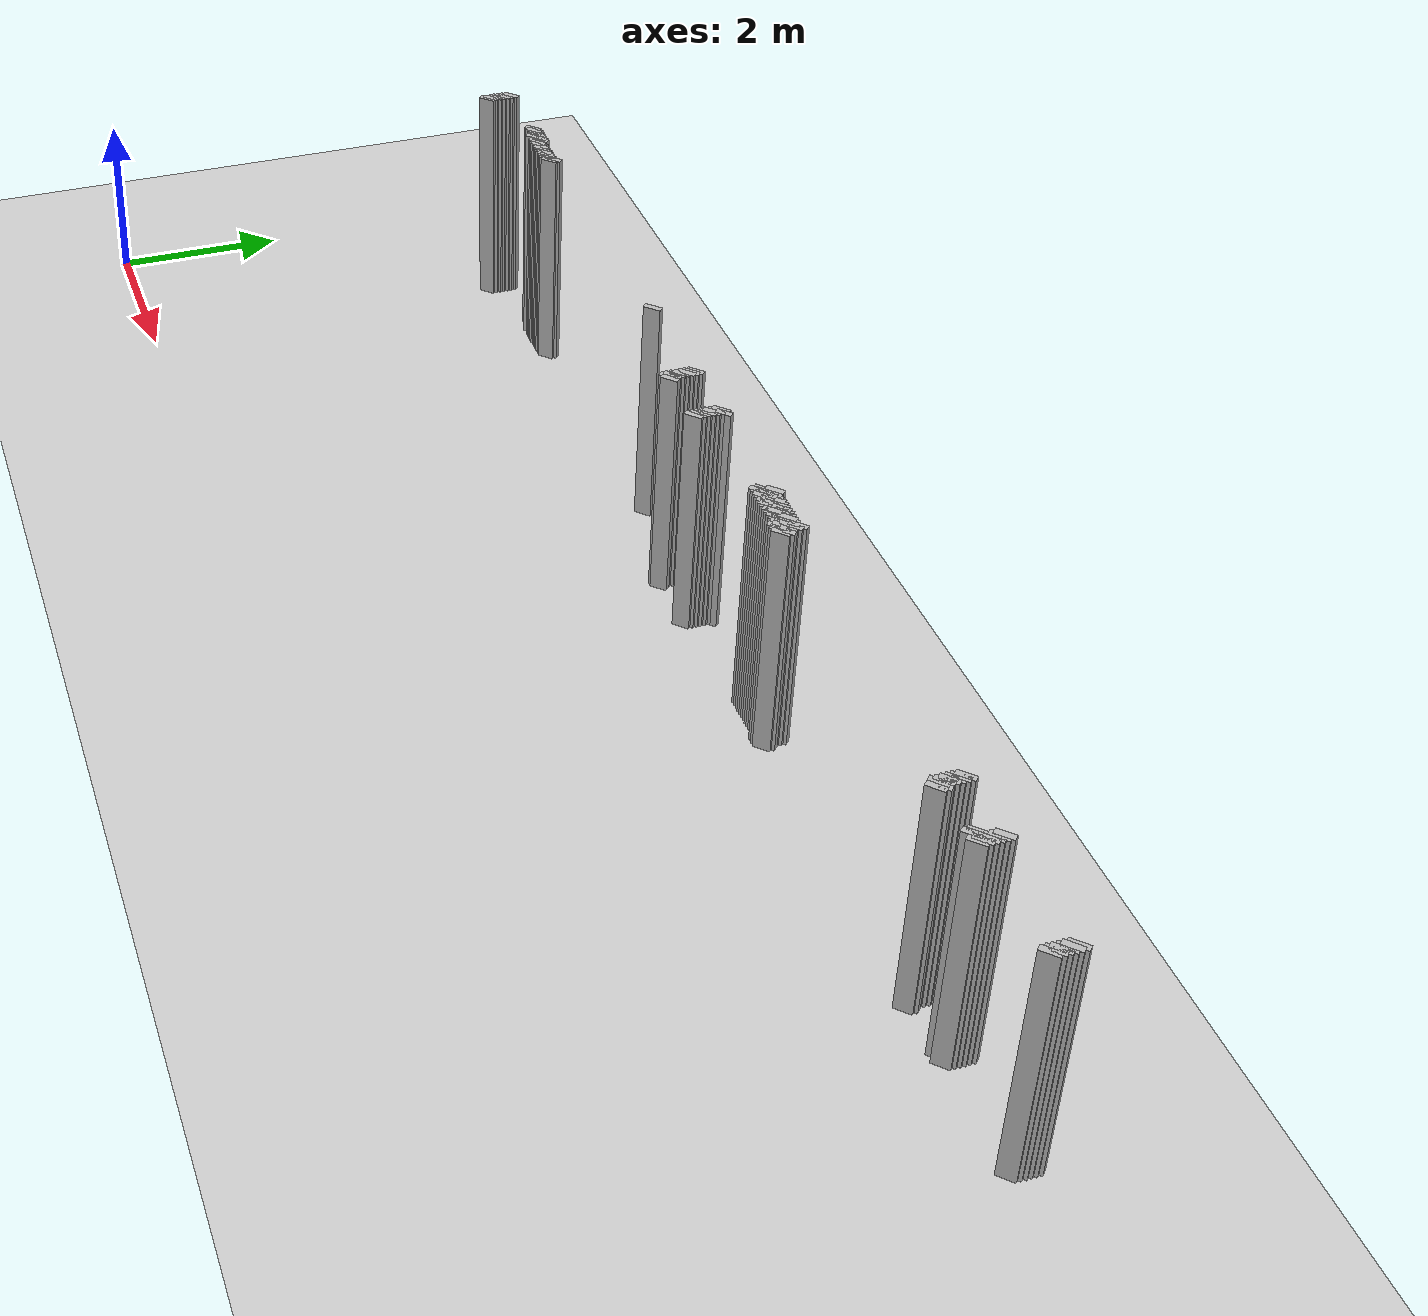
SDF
<sdf version="1.5">
 <world name="default">
  <include><uri>model://ground_plane</uri></include>
  <include><uri>model://sun</uri></include>
  <model name="grey_wall_3180">
   <static>1</static>
   <link name="link">
    <pose>2.0500000000000003 4.7  1.4 0 0 -0.7853981633974572</pose>
    <collision name="collision">
     <geometry><box><size>0.07071067811865513 .2  2.8</size></box></geometry>
    </collision>
    <visual name="visual">
     <cast_shadows>0</cast_shadows>
     <geometry><box><size>0.07071067811865513 .2  2.8</size></box></geometry>
    </visual>
   </link>
  </model>
  <model name="grey_wall_3181">
   <static>1</static>
   <link name="link">
    <pose>2.95 4.7  1.4 0 0 -0.7853981633974572</pose>
    <collision name="collision">
     <geometry><box><size>0.07071067811865513 .2  2.8</size></box></geometry>
    </collision>
    <visual name="visual">
     <cast_shadows>0</cast_shadows>
     <geometry><box><size>0.07071067811865513 .2  2.8</size></box></geometry>
    </visual>
   </link>
  </model>
  <model name="grey_wall_3182">
   <static>1</static>
   <link name="link">
    <pose>3.0 4.7  1.4 0 0 -0.7853981633974572</pose>
    <collision name="collision">
     <geometry><box><size>0.07071067811865513 .2  2.8</size></box></geometry>
    </collision>
    <visual name="visual">
     <cast_shadows>0</cast_shadows>
     <geometry><box><size>0.07071067811865513 .2  2.8</size></box></geometry>
    </visual>
   </link>
  </model>
  <model name="grey_wall_3183">
   <static>1</static>
   <link name="link">
    <pose>3.0500000000000003 4.7  1.4 0 0 -0.7853981633974572</pose>
    <collision name="collision">
     <geometry><box><size>0.07071067811865513 .2  2.8</size></box></geometry>
    </collision>
    <visual name="visual">
     <cast_shadows>0</cast_shadows>
     <geometry><box><size>0.07071067811865513 .2  2.8</size></box></geometry>
    </visual>
   </link>
  </model>
  <model name="grey_wall_3184">
   <static>1</static>
   <link name="link">
    <pose>3.1 4.7  1.4 0 0 -0.7853981633974572</pose>
    <collision name="collision">
     <geometry><box><size>0.07071067811865513 .2  2.8</size></box></geometry>
    </collision>
    <visual name="visual">
     <cast_shadows>0</cast_shadows>
     <geometry><box><size>0.07071067811865513 .2  2.8</size></box></geometry>
    </visual>
   </link>
  </model>
  <model name="grey_wall_3185">
   <static>1</static>
   <link name="link">
    <pose>3.1500000000000004 4.7  1.4 0 0 -0.7853981633974572</pose>
    <collision name="collision">
     <geometry><box><size>0.07071067811865513 .2  2.8</size></box></geometry>
    </collision>
    <visual name="visual">
     <cast_shadows>0</cast_shadows>
     <geometry><box><size>0.07071067811865513 .2  2.8</size></box></geometry>
    </visual>
   </link>
  </model>
  <model name="grey_wall_3186">
   <static>1</static>
   <link name="link">
    <pose>3.2 4.7  1.4 0 0 -0.7853981633974572</pose>
    <collision name="collision">
     <geometry><box><size>0.07071067811865513 .2  2.8</size></box></geometry>
    </collision>
    <visual name="visual">
     <cast_shadows>0</cast_shadows>
     <geometry><box><size>0.07071067811865513 .2  2.8</size></box></geometry>
    </visual>
   </link>
  </model>
  <model name="grey_wall_3187">
   <static>1</static>
   <link name="link">
    <pose>3.25 4.7  1.4 0 0 -0.7853981633974572</pose>
    <collision name="collision">
     <geometry><box><size>0.07071067811865513 .2  2.8</size></box></geometry>
    </collision>
    <visual name="visual">
     <cast_shadows>0</cast_shadows>
     <geometry><box><size>0.07071067811865513 .2  2.8</size></box></geometry>
    </visual>
   </link>
  </model>
  <model name="grey_wall_3188">
   <static>1</static>
   <link name="link">
    <pose>3.75 4.7  1.4 0 0 -0.7853981633974572</pose>
    <collision name="collision">
     <geometry><box><size>0.07071067811865513 .2  2.8</size></box></geometry>
    </collision>
    <visual name="visual">
     <cast_shadows>0</cast_shadows>
     <geometry><box><size>0.07071067811865513 .2  2.8</size></box></geometry>
    </visual>
   </link>
  </model>
  <model name="grey_wall_3189">
   <static>1</static>
   <link name="link">
    <pose>7.2 4.7  1.4 0 0 -0.7853981633974483</pose>
    <collision name="collision">
     <geometry><box><size>0.07071067811865576 .2  2.8</size></box></geometry>
    </collision>
    <visual name="visual">
     <cast_shadows>0</cast_shadows>
     <geometry><box><size>0.07071067811865576 .2  2.8</size></box></geometry>
    </visual>
   </link>
  </model>
  <model name="grey_wall_3190">
   <static>1</static>
   <link name="link">
    <pose>8.5 4.7  1.4 0 0 -0.7853981633974483</pose>
    <collision name="collision">
     <geometry><box><size>0.07071067811865576 .2  2.8</size></box></geometry>
    </collision>
    <visual name="visual">
     <cast_shadows>0</cast_shadows>
     <geometry><box><size>0.07071067811865576 .2  2.8</size></box></geometry>
    </visual>
   </link>
  </model>
  <model name="grey_wall_3191">
   <static>1</static>
   <link name="link">
    <pose>9.25 4.7  1.4 0 0 -0.7853981633974483</pose>
    <collision name="collision">
     <geometry><box><size>0.07071067811865576 .2  2.8</size></box></geometry>
    </collision>
    <visual name="visual">
     <cast_shadows>0</cast_shadows>
     <geometry><box><size>0.07071067811865576 .2  2.8</size></box></geometry>
    </visual>
   </link>
  </model>
  <model name="grey_wall_3192">
   <static>1</static>
   <link name="link">
    <pose>9.3 4.7  1.4 0 0 -0.7853981633974483</pose>
    <collision name="collision">
     <geometry><box><size>0.07071067811865576 .2  2.8</size></box></geometry>
    </collision>
    <visual name="visual">
     <cast_shadows>0</cast_shadows>
     <geometry><box><size>0.07071067811865576 .2  2.8</size></box></geometry>
    </visual>
   </link>
  </model>
  <model name="grey_wall_3193">
   <static>1</static>
   <link name="link">
    <pose>10.700000000000001 4.7  1.4 0 0 -0.7853981633974483</pose>
    <collision name="collision">
     <geometry><box><size>0.07071067811865576 .2  2.8</size></box></geometry>
    </collision>
    <visual name="visual">
     <cast_shadows>0</cast_shadows>
     <geometry><box><size>0.07071067811865576 .2  2.8</size></box></geometry>
    </visual>
   </link>
  </model>
  <model name="grey_wall_3194">
   <static>1</static>
   <link name="link">
    <pose>11.3 4.7  1.4 0 0 -0.7853981633974483</pose>
    <collision name="collision">
     <geometry><box><size>0.07071067811865576 .2  2.8</size></box></geometry>
    </collision>
    <visual name="visual">
     <cast_shadows>0</cast_shadows>
     <geometry><box><size>0.07071067811865576 .2  2.8</size></box></geometry>
    </visual>
   </link>
  </model>
  <model name="grey_wall_3195">
   <static>1</static>
   <link name="link">
    <pose>15.0 4.7  1.4 0 0 -0.7853981633974483</pose>
    <collision name="collision">
     <geometry><box><size>0.07071067811865576 .2  2.8</size></box></geometry>
    </collision>
    <visual name="visual">
     <cast_shadows>0</cast_shadows>
     <geometry><box><size>0.07071067811865576 .2  2.8</size></box></geometry>
    </visual>
   </link>
  </model>
  <model name="grey_wall_3196">
   <static>1</static>
   <link name="link">
    <pose>15.75 4.7  1.4 0 0 -0.7853981633974483</pose>
    <collision name="collision">
     <geometry><box><size>0.07071067811865576 .2  2.8</size></box></geometry>
    </collision>
    <visual name="visual">
     <cast_shadows>0</cast_shadows>
     <geometry><box><size>0.07071067811865576 .2  2.8</size></box></geometry>
    </visual>
   </link>
  </model>
  <model name="grey_wall_3197">
   <static>1</static>
   <link name="link">
    <pose>17.05 4.7  1.4 0 0 -0.7853981633974838</pose>
    <collision name="collision">
     <geometry><box><size>0.07071067811865325 .2  2.8</size></box></geometry>
    </collision>
    <visual name="visual">
     <cast_shadows>0</cast_shadows>
     <geometry><box><size>0.07071067811865325 .2  2.8</size></box></geometry>
    </visual>
   </link>
  </model>
  <model name="grey_wall_3198">
   <static>1</static>
   <link name="link">
    <pose>2.0500000000000003 4.65  1.4 0 0 -0.7853981633974572</pose>
    <collision name="collision">
     <geometry><box><size>0.07071067811865513 .2  2.8</size></box></geometry>
    </collision>
    <visual name="visual">
     <cast_shadows>0</cast_shadows>
     <geometry><box><size>0.07071067811865513 .2  2.8</size></box></geometry>
    </visual>
   </link>
  </model>
  <model name="grey_wall_3199">
   <static>1</static>
   <link name="link">
    <pose>3.1500000000000004 4.65  1.4 0 0 -0.7853981633974572</pose>
    <collision name="collision">
     <geometry><box><size>0.07071067811865513 .2  2.8</size></box></geometry>
    </collision>
    <visual name="visual">
     <cast_shadows>0</cast_shadows>
     <geometry><box><size>0.07071067811865513 .2  2.8</size></box></geometry>
    </visual>
   </link>
  </model>
  <model name="grey_wall_3200">
   <static>1</static>
   <link name="link">
    <pose>3.25 4.65  1.4 0 0 -0.7853981633974572</pose>
    <collision name="collision">
     <geometry><box><size>0.07071067811865513 .2  2.8</size></box></geometry>
    </collision>
    <visual name="visual">
     <cast_shadows>0</cast_shadows>
     <geometry><box><size>0.07071067811865513 .2  2.8</size></box></geometry>
    </visual>
   </link>
  </model>
  <model name="grey_wall_3201">
   <static>1</static>
   <link name="link">
    <pose>3.3000000000000003 4.65  1.4 0 0 -0.7853981633974572</pose>
    <collision name="collision">
     <geometry><box><size>0.07071067811865513 .2  2.8</size></box></geometry>
    </collision>
    <visual name="visual">
     <cast_shadows>0</cast_shadows>
     <geometry><box><size>0.07071067811865513 .2  2.8</size></box></geometry>
    </visual>
   </link>
  </model>
  <model name="grey_wall_3202">
   <static>1</static>
   <link name="link">
    <pose>3.35 4.65  1.4 0 0 -0.7853981633974572</pose>
    <collision name="collision">
     <geometry><box><size>0.07071067811865513 .2  2.8</size></box></geometry>
    </collision>
    <visual name="visual">
     <cast_shadows>0</cast_shadows>
     <geometry><box><size>0.07071067811865513 .2  2.8</size></box></geometry>
    </visual>
   </link>
  </model>
  <model name="grey_wall_3203">
   <static>1</static>
   <link name="link">
    <pose>3.4000000000000004 4.65  1.4 0 0 -0.7853981633974572</pose>
    <collision name="collision">
     <geometry><box><size>0.07071067811865513 .2  2.8</size></box></geometry>
    </collision>
    <visual name="visual">
     <cast_shadows>0</cast_shadows>
     <geometry><box><size>0.07071067811865513 .2  2.8</size></box></geometry>
    </visual>
   </link>
  </model>
  <model name="grey_wall_3204">
   <static>1</static>
   <link name="link">
    <pose>3.45 4.65  1.4 0 0 -0.7853981633974572</pose>
    <collision name="collision">
     <geometry><box><size>0.07071067811865513 .2  2.8</size></box></geometry>
    </collision>
    <visual name="visual">
     <cast_shadows>0</cast_shadows>
     <geometry><box><size>0.07071067811865513 .2  2.8</size></box></geometry>
    </visual>
   </link>
  </model>
  <model name="grey_wall_3205">
   <static>1</static>
   <link name="link">
    <pose>3.5 4.65  1.4 0 0 -0.7853981633974572</pose>
    <collision name="collision">
     <geometry><box><size>0.07071067811865513 .2  2.8</size></box></geometry>
    </collision>
    <visual name="visual">
     <cast_shadows>0</cast_shadows>
     <geometry><box><size>0.07071067811865513 .2  2.8</size></box></geometry>
    </visual>
   </link>
  </model>
  <model name="grey_wall_3206">
   <static>1</static>
   <link name="link">
    <pose>3.5500000000000003 4.65  1.4 0 0 -0.7853981633974572</pose>
    <collision name="collision">
     <geometry><box><size>0.07071067811865513 .2  2.8</size></box></geometry>
    </collision>
    <visual name="visual">
     <cast_shadows>0</cast_shadows>
     <geometry><box><size>0.07071067811865513 .2  2.8</size></box></geometry>
    </visual>
   </link>
  </model>
  <model name="grey_wall_3207">
   <static>1</static>
   <link name="link">
    <pose>3.6 4.65  1.4 0 0 -0.7853981633974572</pose>
    <collision name="collision">
     <geometry><box><size>0.07071067811865513 .2  2.8</size></box></geometry>
    </collision>
    <visual name="visual">
     <cast_shadows>0</cast_shadows>
     <geometry><box><size>0.07071067811865513 .2  2.8</size></box></geometry>
    </visual>
   </link>
  </model>
  <model name="grey_wall_3208">
   <static>1</static>
   <link name="link">
    <pose>3.6500000000000004 4.65  1.4 0 0 -0.7853981633974572</pose>
    <collision name="collision">
     <geometry><box><size>0.07071067811865513 .2  2.8</size></box></geometry>
    </collision>
    <visual name="visual">
     <cast_shadows>0</cast_shadows>
     <geometry><box><size>0.07071067811865513 .2  2.8</size></box></geometry>
    </visual>
   </link>
  </model>
  <model name="grey_wall_3209">
   <static>1</static>
   <link name="link">
    <pose>3.7 4.65  1.4 0 0 -0.7853981633974572</pose>
    <collision name="collision">
     <geometry><box><size>0.07071067811865513 .2  2.8</size></box></geometry>
    </collision>
    <visual name="visual">
     <cast_shadows>0</cast_shadows>
     <geometry><box><size>0.07071067811865513 .2  2.8</size></box></geometry>
    </visual>
   </link>
  </model>
  <model name="grey_wall_3210">
   <static>1</static>
   <link name="link">
    <pose>3.75 4.65  1.4 0 0 -0.7853981633974572</pose>
    <collision name="collision">
     <geometry><box><size>0.07071067811865513 .2  2.8</size></box></geometry>
    </collision>
    <visual name="visual">
     <cast_shadows>0</cast_shadows>
     <geometry><box><size>0.07071067811865513 .2  2.8</size></box></geometry>
    </visual>
   </link>
  </model>
  <model name="grey_wall_3211">
   <static>1</static>
   <link name="link">
    <pose>8.5 4.65  1.4 0 0 -0.7853981633974483</pose>
    <collision name="collision">
     <geometry><box><size>0.07071067811865576 .2  2.8</size></box></geometry>
    </collision>
    <visual name="visual">
     <cast_shadows>0</cast_shadows>
     <geometry><box><size>0.07071067811865576 .2  2.8</size></box></geometry>
    </visual>
   </link>
  </model>
  <model name="grey_wall_3212">
   <static>1</static>
   <link name="link">
    <pose>9.25 4.65  1.4 0 0 -0.7853981633974483</pose>
    <collision name="collision">
     <geometry><box><size>0.07071067811865576 .2  2.8</size></box></geometry>
    </collision>
    <visual name="visual">
     <cast_shadows>0</cast_shadows>
     <geometry><box><size>0.07071067811865576 .2  2.8</size></box></geometry>
    </visual>
   </link>
  </model>
  <model name="grey_wall_3213">
   <static>1</static>
   <link name="link">
    <pose>10.700000000000001 4.65  1.4 0 0 -0.7853981633974483</pose>
    <collision name="collision">
     <geometry><box><size>0.07071067811865576 .2  2.8</size></box></geometry>
    </collision>
    <visual name="visual">
     <cast_shadows>0</cast_shadows>
     <geometry><box><size>0.07071067811865576 .2  2.8</size></box></geometry>
    </visual>
   </link>
  </model>
  <model name="grey_wall_3214">
   <static>1</static>
   <link name="link">
    <pose>10.75 4.65  1.4 0 0 -0.7853981633974483</pose>
    <collision name="collision">
     <geometry><box><size>0.07071067811865576 .2  2.8</size></box></geometry>
    </collision>
    <visual name="visual">
     <cast_shadows>0</cast_shadows>
     <geometry><box><size>0.07071067811865576 .2  2.8</size></box></geometry>
    </visual>
   </link>
  </model>
  <model name="grey_wall_3215">
   <static>1</static>
   <link name="link">
    <pose>10.8 4.65  1.4 0 0 -0.7853981633974483</pose>
    <collision name="collision">
     <geometry><box><size>0.07071067811865576 .2  2.8</size></box></geometry>
    </collision>
    <visual name="visual">
     <cast_shadows>0</cast_shadows>
     <geometry><box><size>0.07071067811865576 .2  2.8</size></box></geometry>
    </visual>
   </link>
  </model>
  <model name="grey_wall_3216">
   <static>1</static>
   <link name="link">
    <pose>10.850000000000001 4.65  1.4 0 0 -0.7853981633974483</pose>
    <collision name="collision">
     <geometry><box><size>0.07071067811865576 .2  2.8</size></box></geometry>
    </collision>
    <visual name="visual">
     <cast_shadows>0</cast_shadows>
     <geometry><box><size>0.07071067811865576 .2  2.8</size></box></geometry>
    </visual>
   </link>
  </model>
  <model name="grey_wall_3217">
   <static>1</static>
   <link name="link">
    <pose>10.9 4.65  1.4 0 0 -0.7853981633974483</pose>
    <collision name="collision">
     <geometry><box><size>0.07071067811865576 .2  2.8</size></box></geometry>
    </collision>
    <visual name="visual">
     <cast_shadows>0</cast_shadows>
     <geometry><box><size>0.07071067811865576 .2  2.8</size></box></geometry>
    </visual>
   </link>
  </model>
  <model name="grey_wall_3218">
   <static>1</static>
   <link name="link">
    <pose>10.950000000000001 4.65  1.4 0 0 -0.7853981633974483</pose>
    <collision name="collision">
     <geometry><box><size>0.07071067811865576 .2  2.8</size></box></geometry>
    </collision>
    <visual name="visual">
     <cast_shadows>0</cast_shadows>
     <geometry><box><size>0.07071067811865576 .2  2.8</size></box></geometry>
    </visual>
   </link>
  </model>
  <model name="grey_wall_3219">
   <static>1</static>
   <link name="link">
    <pose>11.0 4.65  1.4 0 0 -0.7853981633974483</pose>
    <collision name="collision">
     <geometry><box><size>0.07071067811865576 .2  2.8</size></box></geometry>
    </collision>
    <visual name="visual">
     <cast_shadows>0</cast_shadows>
     <geometry><box><size>0.07071067811865576 .2  2.8</size></box></geometry>
    </visual>
   </link>
  </model>
  <model name="grey_wall_3220">
   <static>1</static>
   <link name="link">
    <pose>11.05 4.65  1.4 0 0 -0.7853981633974483</pose>
    <collision name="collision">
     <geometry><box><size>0.07071067811865576 .2  2.8</size></box></geometry>
    </collision>
    <visual name="visual">
     <cast_shadows>0</cast_shadows>
     <geometry><box><size>0.07071067811865576 .2  2.8</size></box></geometry>
    </visual>
   </link>
  </model>
  <model name="grey_wall_3221">
   <static>1</static>
   <link name="link">
    <pose>11.100000000000001 4.65  1.4 0 0 -0.7853981633974483</pose>
    <collision name="collision">
     <geometry><box><size>0.07071067811865576 .2  2.8</size></box></geometry>
    </collision>
    <visual name="visual">
     <cast_shadows>0</cast_shadows>
     <geometry><box><size>0.07071067811865576 .2  2.8</size></box></geometry>
    </visual>
   </link>
  </model>
  <model name="grey_wall_3222">
   <static>1</static>
   <link name="link">
    <pose>11.15 4.65  1.4 0 0 -0.7853981633974483</pose>
    <collision name="collision">
     <geometry><box><size>0.07071067811865576 .2  2.8</size></box></geometry>
    </collision>
    <visual name="visual">
     <cast_shadows>0</cast_shadows>
     <geometry><box><size>0.07071067811865576 .2  2.8</size></box></geometry>
    </visual>
   </link>
  </model>
  <model name="grey_wall_3223">
   <static>1</static>
   <link name="link">
    <pose>11.200000000000001 4.65  1.4 0 0 -0.7853981633974483</pose>
    <collision name="collision">
     <geometry><box><size>0.07071067811865576 .2  2.8</size></box></geometry>
    </collision>
    <visual name="visual">
     <cast_shadows>0</cast_shadows>
     <geometry><box><size>0.07071067811865576 .2  2.8</size></box></geometry>
    </visual>
   </link>
  </model>
  <model name="grey_wall_3224">
   <static>1</static>
   <link name="link">
    <pose>11.3 4.65  1.4 0 0 -0.7853981633974483</pose>
    <collision name="collision">
     <geometry><box><size>0.07071067811865576 .2  2.8</size></box></geometry>
    </collision>
    <visual name="visual">
     <cast_shadows>0</cast_shadows>
     <geometry><box><size>0.07071067811865576 .2  2.8</size></box></geometry>
    </visual>
   </link>
  </model>
  <model name="grey_wall_3225">
   <static>1</static>
   <link name="link">
    <pose>15.0 4.65  1.4 0 0 -0.7853981633974483</pose>
    <collision name="collision">
     <geometry><box><size>0.07071067811865576 .2  2.8</size></box></geometry>
    </collision>
    <visual name="visual">
     <cast_shadows>0</cast_shadows>
     <geometry><box><size>0.07071067811865576 .2  2.8</size></box></geometry>
    </visual>
   </link>
  </model>
  <model name="grey_wall_3226">
   <static>1</static>
   <link name="link">
    <pose>15.75 4.65  1.4 0 0 -0.7853981633974483</pose>
    <collision name="collision">
     <geometry><box><size>0.07071067811865576 .2  2.8</size></box></geometry>
    </collision>
    <visual name="visual">
     <cast_shadows>0</cast_shadows>
     <geometry><box><size>0.07071067811865576 .2  2.8</size></box></geometry>
    </visual>
   </link>
  </model>
  <model name="grey_wall_3227">
   <static>1</static>
   <link name="link">
    <pose>17.05 4.65  1.4 0 0 -0.7853981633974838</pose>
    <collision name="collision">
     <geometry><box><size>0.07071067811865325 .2  2.8</size></box></geometry>
    </collision>
    <visual name="visual">
     <cast_shadows>0</cast_shadows>
     <geometry><box><size>0.07071067811865325 .2  2.8</size></box></geometry>
    </visual>
   </link>
  </model>
  <model name="grey_wall_3228">
   <static>1</static>
   <link name="link">
    <pose>2.0500000000000003 4.6000000000000005  1.4 0 0 -0.7853981633974572</pose>
    <collision name="collision">
     <geometry><box><size>0.07071067811865513 .2  2.8</size></box></geometry>
    </collision>
    <visual name="visual">
     <cast_shadows>0</cast_shadows>
     <geometry><box><size>0.07071067811865513 .2  2.8</size></box></geometry>
    </visual>
   </link>
  </model>
  <model name="grey_wall_3229">
   <static>1</static>
   <link name="link">
    <pose>8.5 4.6000000000000005  1.4 0 0 -0.7853981633974483</pose>
    <collision name="collision">
     <geometry><box><size>0.07071067811865576 .2  2.8</size></box></geometry>
    </collision>
    <visual name="visual">
     <cast_shadows>0</cast_shadows>
     <geometry><box><size>0.07071067811865576 .2  2.8</size></box></geometry>
    </visual>
   </link>
  </model>
  <model name="grey_wall_3230">
   <static>1</static>
   <link name="link">
    <pose>9.25 4.6000000000000005  1.4 0 0 -0.7853981633974483</pose>
    <collision name="collision">
     <geometry><box><size>0.07071067811865576 .2  2.8</size></box></geometry>
    </collision>
    <visual name="visual">
     <cast_shadows>0</cast_shadows>
     <geometry><box><size>0.07071067811865576 .2  2.8</size></box></geometry>
    </visual>
   </link>
  </model>
  <model name="grey_wall_3231">
   <static>1</static>
   <link name="link">
    <pose>10.65 4.6000000000000005  1.4 0 0 -0.7853981633974483</pose>
    <collision name="collision">
     <geometry><box><size>0.07071067811865576 .2  2.8</size></box></geometry>
    </collision>
    <visual name="visual">
     <cast_shadows>0</cast_shadows>
     <geometry><box><size>0.07071067811865576 .2  2.8</size></box></geometry>
    </visual>
   </link>
  </model>
  <model name="grey_wall_3232">
   <static>1</static>
   <link name="link">
    <pose>10.700000000000001 4.6000000000000005  1.4 0 0 -0.7853981633974483</pose>
    <collision name="collision">
     <geometry><box><size>0.07071067811865576 .2  2.8</size></box></geometry>
    </collision>
    <visual name="visual">
     <cast_shadows>0</cast_shadows>
     <geometry><box><size>0.07071067811865576 .2  2.8</size></box></geometry>
    </visual>
   </link>
  </model>
  <model name="grey_wall_3233">
   <static>1</static>
   <link name="link">
    <pose>10.75 4.6000000000000005  1.4 0 0 -0.7853981633974483</pose>
    <collision name="collision">
     <geometry><box><size>0.07071067811865576 .2  2.8</size></box></geometry>
    </collision>
    <visual name="visual">
     <cast_shadows>0</cast_shadows>
     <geometry><box><size>0.07071067811865576 .2  2.8</size></box></geometry>
    </visual>
   </link>
  </model>
  <model name="grey_wall_3234">
   <static>1</static>
   <link name="link">
    <pose>10.850000000000001 4.6000000000000005  1.4 0 0 -0.7853981633974483</pose>
    <collision name="collision">
     <geometry><box><size>0.07071067811865576 .2  2.8</size></box></geometry>
    </collision>
    <visual name="visual">
     <cast_shadows>0</cast_shadows>
     <geometry><box><size>0.07071067811865576 .2  2.8</size></box></geometry>
    </visual>
   </link>
  </model>
  <model name="grey_wall_3235">
   <static>1</static>
   <link name="link">
    <pose>11.0 4.6000000000000005  1.4 0 0 -0.7853981633974483</pose>
    <collision name="collision">
     <geometry><box><size>0.07071067811865576 .2  2.8</size></box></geometry>
    </collision>
    <visual name="visual">
     <cast_shadows>0</cast_shadows>
     <geometry><box><size>0.07071067811865576 .2  2.8</size></box></geometry>
    </visual>
   </link>
  </model>
  <model name="grey_wall_3236">
   <static>1</static>
   <link name="link">
    <pose>11.05 4.6000000000000005  1.4 0 0 -0.7853981633974483</pose>
    <collision name="collision">
     <geometry><box><size>0.07071067811865576 .2  2.8</size></box></geometry>
    </collision>
    <visual name="visual">
     <cast_shadows>0</cast_shadows>
     <geometry><box><size>0.07071067811865576 .2  2.8</size></box></geometry>
    </visual>
   </link>
  </model>
  <model name="grey_wall_3237">
   <static>1</static>
   <link name="link">
    <pose>11.200000000000001 4.6000000000000005  1.4 0 0 -0.7853981633974483</pose>
    <collision name="collision">
     <geometry><box><size>0.07071067811865576 .2  2.8</size></box></geometry>
    </collision>
    <visual name="visual">
     <cast_shadows>0</cast_shadows>
     <geometry><box><size>0.07071067811865576 .2  2.8</size></box></geometry>
    </visual>
   </link>
  </model>
  <model name="grey_wall_3238">
   <static>1</static>
   <link name="link">
    <pose>11.3 4.6000000000000005  1.4 0 0 -0.7853981633974483</pose>
    <collision name="collision">
     <geometry><box><size>0.07071067811865576 .2  2.8</size></box></geometry>
    </collision>
    <visual name="visual">
     <cast_shadows>0</cast_shadows>
     <geometry><box><size>0.07071067811865576 .2  2.8</size></box></geometry>
    </visual>
   </link>
  </model>
  <model name="grey_wall_3239">
   <static>1</static>
   <link name="link">
    <pose>15.0 4.6000000000000005  1.4 0 0 -0.7853981633974483</pose>
    <collision name="collision">
     <geometry><box><size>0.07071067811865576 .2  2.8</size></box></geometry>
    </collision>
    <visual name="visual">
     <cast_shadows>0</cast_shadows>
     <geometry><box><size>0.07071067811865576 .2  2.8</size></box></geometry>
    </visual>
   </link>
  </model>
  <model name="grey_wall_3240">
   <static>1</static>
   <link name="link">
    <pose>15.75 4.6000000000000005  1.4 0 0 -0.7853981633974483</pose>
    <collision name="collision">
     <geometry><box><size>0.07071067811865576 .2  2.8</size></box></geometry>
    </collision>
    <visual name="visual">
     <cast_shadows>0</cast_shadows>
     <geometry><box><size>0.07071067811865576 .2  2.8</size></box></geometry>
    </visual>
   </link>
  </model>
  <model name="grey_wall_3241">
   <static>1</static>
   <link name="link">
    <pose>17.05 4.6000000000000005  1.4 0 0 -0.7853981633974838</pose>
    <collision name="collision">
     <geometry><box><size>0.07071067811865325 .2  2.8</size></box></geometry>
    </collision>
    <visual name="visual">
     <cast_shadows>0</cast_shadows>
     <geometry><box><size>0.07071067811865325 .2  2.8</size></box></geometry>
    </visual>
   </link>
  </model>
  <model name="grey_wall_3242">
   <static>1</static>
   <link name="link">
    <pose>2.0500000000000003 4.55  1.4 0 0 -0.7853981633974572</pose>
    <collision name="collision">
     <geometry><box><size>0.07071067811865513 .2  2.8</size></box></geometry>
    </collision>
    <visual name="visual">
     <cast_shadows>0</cast_shadows>
     <geometry><box><size>0.07071067811865513 .2  2.8</size></box></geometry>
    </visual>
   </link>
  </model>
  <model name="grey_wall_3243">
   <static>1</static>
   <link name="link">
    <pose>8.5 4.55  1.4 0 0 -0.7853981633974483</pose>
    <collision name="collision">
     <geometry><box><size>0.07071067811865576 .2  2.8</size></box></geometry>
    </collision>
    <visual name="visual">
     <cast_shadows>0</cast_shadows>
     <geometry><box><size>0.07071067811865576 .2  2.8</size></box></geometry>
    </visual>
   </link>
  </model>
  <model name="grey_wall_3244">
   <static>1</static>
   <link name="link">
    <pose>9.25 4.55  1.4 0 0 -0.7853981633974483</pose>
    <collision name="collision">
     <geometry><box><size>0.07071067811865576 .2  2.8</size></box></geometry>
    </collision>
    <visual name="visual">
     <cast_shadows>0</cast_shadows>
     <geometry><box><size>0.07071067811865576 .2  2.8</size></box></geometry>
    </visual>
   </link>
  </model>
  <model name="grey_wall_3245">
   <static>1</static>
   <link name="link">
    <pose>10.65 4.55  1.4 0 0 -0.7853981633974483</pose>
    <collision name="collision">
     <geometry><box><size>0.07071067811865576 .2  2.8</size></box></geometry>
    </collision>
    <visual name="visual">
     <cast_shadows>0</cast_shadows>
     <geometry><box><size>0.07071067811865576 .2  2.8</size></box></geometry>
    </visual>
   </link>
  </model>
  <model name="grey_wall_3246">
   <static>1</static>
   <link name="link">
    <pose>10.700000000000001 4.55  1.4 0 0 -0.7853981633974483</pose>
    <collision name="collision">
     <geometry><box><size>0.07071067811865576 .2  2.8</size></box></geometry>
    </collision>
    <visual name="visual">
     <cast_shadows>0</cast_shadows>
     <geometry><box><size>0.07071067811865576 .2  2.8</size></box></geometry>
    </visual>
   </link>
  </model>
  <model name="grey_wall_3247">
   <static>1</static>
   <link name="link">
    <pose>10.75 4.55  1.4 0 0 -0.7853981633974483</pose>
    <collision name="collision">
     <geometry><box><size>0.07071067811865576 .2  2.8</size></box></geometry>
    </collision>
    <visual name="visual">
     <cast_shadows>0</cast_shadows>
     <geometry><box><size>0.07071067811865576 .2  2.8</size></box></geometry>
    </visual>
   </link>
  </model>
  <model name="grey_wall_3248">
   <static>1</static>
   <link name="link">
    <pose>10.8 4.55  1.4 0 0 -0.7853981633974483</pose>
    <collision name="collision">
     <geometry><box><size>0.07071067811865576 .2  2.8</size></box></geometry>
    </collision>
    <visual name="visual">
     <cast_shadows>0</cast_shadows>
     <geometry><box><size>0.07071067811865576 .2  2.8</size></box></geometry>
    </visual>
   </link>
  </model>
  <model name="grey_wall_3249">
   <static>1</static>
   <link name="link">
    <pose>10.850000000000001 4.55  1.4 0 0 -0.7853981633974483</pose>
    <collision name="collision">
     <geometry><box><size>0.07071067811865576 .2  2.8</size></box></geometry>
    </collision>
    <visual name="visual">
     <cast_shadows>0</cast_shadows>
     <geometry><box><size>0.07071067811865576 .2  2.8</size></box></geometry>
    </visual>
   </link>
  </model>
  <model name="grey_wall_3250">
   <static>1</static>
   <link name="link">
    <pose>10.9 4.55  1.4 0 0 -0.7853981633974483</pose>
    <collision name="collision">
     <geometry><box><size>0.07071067811865576 .2  2.8</size></box></geometry>
    </collision>
    <visual name="visual">
     <cast_shadows>0</cast_shadows>
     <geometry><box><size>0.07071067811865576 .2  2.8</size></box></geometry>
    </visual>
   </link>
  </model>
  <model name="grey_wall_3251">
   <static>1</static>
   <link name="link">
    <pose>10.950000000000001 4.55  1.4 0 0 -0.7853981633974483</pose>
    <collision name="collision">
     <geometry><box><size>0.07071067811865576 .2  2.8</size></box></geometry>
    </collision>
    <visual name="visual">
     <cast_shadows>0</cast_shadows>
     <geometry><box><size>0.07071067811865576 .2  2.8</size></box></geometry>
    </visual>
   </link>
  </model>
  <model name="grey_wall_3252">
   <static>1</static>
   <link name="link">
    <pose>11.0 4.55  1.4 0 0 -0.7853981633974483</pose>
    <collision name="collision">
     <geometry><box><size>0.07071067811865576 .2  2.8</size></box></geometry>
    </collision>
    <visual name="visual">
     <cast_shadows>0</cast_shadows>
     <geometry><box><size>0.07071067811865576 .2  2.8</size></box></geometry>
    </visual>
   </link>
  </model>
  <model name="grey_wall_3253">
   <static>1</static>
   <link name="link">
    <pose>11.05 4.55  1.4 0 0 -0.7853981633974483</pose>
    <collision name="collision">
     <geometry><box><size>0.07071067811865576 .2  2.8</size></box></geometry>
    </collision>
    <visual name="visual">
     <cast_shadows>0</cast_shadows>
     <geometry><box><size>0.07071067811865576 .2  2.8</size></box></geometry>
    </visual>
   </link>
  </model>
  <model name="grey_wall_3254">
   <static>1</static>
   <link name="link">
    <pose>11.100000000000001 4.55  1.4 0 0 -0.7853981633974483</pose>
    <collision name="collision">
     <geometry><box><size>0.07071067811865576 .2  2.8</size></box></geometry>
    </collision>
    <visual name="visual">
     <cast_shadows>0</cast_shadows>
     <geometry><box><size>0.07071067811865576 .2  2.8</size></box></geometry>
    </visual>
   </link>
  </model>
  <model name="grey_wall_3255">
   <static>1</static>
   <link name="link">
    <pose>11.15 4.55  1.4 0 0 -0.7853981633974483</pose>
    <collision name="collision">
     <geometry><box><size>0.07071067811865576 .2  2.8</size></box></geometry>
    </collision>
    <visual name="visual">
     <cast_shadows>0</cast_shadows>
     <geometry><box><size>0.07071067811865576 .2  2.8</size></box></geometry>
    </visual>
   </link>
  </model>
  <model name="grey_wall_3256">
   <static>1</static>
   <link name="link">
    <pose>11.200000000000001 4.55  1.4 0 0 -0.7853981633974483</pose>
    <collision name="collision">
     <geometry><box><size>0.07071067811865576 .2  2.8</size></box></geometry>
    </collision>
    <visual name="visual">
     <cast_shadows>0</cast_shadows>
     <geometry><box><size>0.07071067811865576 .2  2.8</size></box></geometry>
    </visual>
   </link>
  </model>
  <model name="grey_wall_3257">
   <static>1</static>
   <link name="link">
    <pose>11.25 4.55  1.4 0 0 -0.7853981633974483</pose>
    <collision name="collision">
     <geometry><box><size>0.07071067811865576 .2  2.8</size></box></geometry>
    </collision>
    <visual name="visual">
     <cast_shadows>0</cast_shadows>
     <geometry><box><size>0.07071067811865576 .2  2.8</size></box></geometry>
    </visual>
   </link>
  </model>
  <model name="grey_wall_3258">
   <static>1</static>
   <link name="link">
    <pose>11.3 4.55  1.4 0 0 -0.7853981633974483</pose>
    <collision name="collision">
     <geometry><box><size>0.07071067811865576 .2  2.8</size></box></geometry>
    </collision>
    <visual name="visual">
     <cast_shadows>0</cast_shadows>
     <geometry><box><size>0.07071067811865576 .2  2.8</size></box></geometry>
    </visual>
   </link>
  </model>
  <model name="grey_wall_3259">
   <static>1</static>
   <link name="link">
    <pose>11.350000000000001 4.55  1.4 0 0 -0.7853981633974483</pose>
    <collision name="collision">
     <geometry><box><size>0.07071067811865576 .2  2.8</size></box></geometry>
    </collision>
    <visual name="visual">
     <cast_shadows>0</cast_shadows>
     <geometry><box><size>0.07071067811865576 .2  2.8</size></box></geometry>
    </visual>
   </link>
  </model>
  <model name="grey_wall_3260">
   <static>1</static>
   <link name="link">
    <pose>15.0 4.55  1.4 0 0 -0.7853981633974483</pose>
    <collision name="collision">
     <geometry><box><size>0.07071067811865576 .2  2.8</size></box></geometry>
    </collision>
    <visual name="visual">
     <cast_shadows>0</cast_shadows>
     <geometry><box><size>0.07071067811865576 .2  2.8</size></box></geometry>
    </visual>
   </link>
  </model>
  <model name="grey_wall_3261">
   <static>1</static>
   <link name="link">
    <pose>15.75 4.55  1.4 0 0 -0.7853981633974483</pose>
    <collision name="collision">
     <geometry><box><size>0.07071067811865576 .2  2.8</size></box></geometry>
    </collision>
    <visual name="visual">
     <cast_shadows>0</cast_shadows>
     <geometry><box><size>0.07071067811865576 .2  2.8</size></box></geometry>
    </visual>
   </link>
  </model>
  <model name="grey_wall_3262">
   <static>1</static>
   <link name="link">
    <pose>17.05 4.55  1.4 0 0 -0.7853981633974838</pose>
    <collision name="collision">
     <geometry><box><size>0.07071067811865325 .2  2.8</size></box></geometry>
    </collision>
    <visual name="visual">
     <cast_shadows>0</cast_shadows>
     <geometry><box><size>0.07071067811865325 .2  2.8</size></box></geometry>
    </visual>
   </link>
  </model>
  <model name="grey_wall_3263">
   <static>1</static>
   <link name="link">
    <pose>2.0500000000000003 4.5  1.4 0 0 -0.7853981633974572</pose>
    <collision name="collision">
     <geometry><box><size>0.07071067811865513 .2  2.8</size></box></geometry>
    </collision>
    <visual name="visual">
     <cast_shadows>0</cast_shadows>
     <geometry><box><size>0.07071067811865513 .2  2.8</size></box></geometry>
    </visual>
   </link>
  </model>
  <model name="grey_wall_3264">
   <static>1</static>
   <link name="link">
    <pose>8.5 4.5  1.4 0 0 -0.7853981633974483</pose>
    <collision name="collision">
     <geometry><box><size>0.07071067811865576 .2  2.8</size></box></geometry>
    </collision>
    <visual name="visual">
     <cast_shadows>0</cast_shadows>
     <geometry><box><size>0.07071067811865576 .2  2.8</size></box></geometry>
    </visual>
   </link>
  </model>
  <model name="grey_wall_3265">
   <static>1</static>
   <link name="link">
    <pose>9.25 4.5  1.4 0 0 -0.7853981633974483</pose>
    <collision name="collision">
     <geometry><box><size>0.07071067811865576 .2  2.8</size></box></geometry>
    </collision>
    <visual name="visual">
     <cast_shadows>0</cast_shadows>
     <geometry><box><size>0.07071067811865576 .2  2.8</size></box></geometry>
    </visual>
   </link>
  </model>
  <model name="grey_wall_3266">
   <static>1</static>
   <link name="link">
    <pose>11.25 4.5  1.4 0 0 -0.7853981633974483</pose>
    <collision name="collision">
     <geometry><box><size>0.07071067811865576 .2  2.8</size></box></geometry>
    </collision>
    <visual name="visual">
     <cast_shadows>0</cast_shadows>
     <geometry><box><size>0.07071067811865576 .2  2.8</size></box></geometry>
    </visual>
   </link>
  </model>
  <model name="grey_wall_3267">
   <static>1</static>
   <link name="link">
    <pose>11.3 4.5  1.4 0 0 -0.7853981633974483</pose>
    <collision name="collision">
     <geometry><box><size>0.07071067811865576 .2  2.8</size></box></geometry>
    </collision>
    <visual name="visual">
     <cast_shadows>0</cast_shadows>
     <geometry><box><size>0.07071067811865576 .2  2.8</size></box></geometry>
    </visual>
   </link>
  </model>
  <model name="grey_wall_3268">
   <static>1</static>
   <link name="link">
    <pose>11.350000000000001 4.5  1.4 0 0 -0.7853981633974483</pose>
    <collision name="collision">
     <geometry><box><size>0.07071067811865576 .2  2.8</size></box></geometry>
    </collision>
    <visual name="visual">
     <cast_shadows>0</cast_shadows>
     <geometry><box><size>0.07071067811865576 .2  2.8</size></box></geometry>
    </visual>
   </link>
  </model>
  <model name="grey_wall_3269">
   <static>1</static>
   <link name="link">
    <pose>15.0 4.5  1.4 0 0 -0.7853981633974483</pose>
    <collision name="collision">
     <geometry><box><size>0.07071067811865576 .2  2.8</size></box></geometry>
    </collision>
    <visual name="visual">
     <cast_shadows>0</cast_shadows>
     <geometry><box><size>0.07071067811865576 .2  2.8</size></box></geometry>
    </visual>
   </link>
  </model>
  <model name="grey_wall_3270">
   <static>1</static>
   <link name="link">
    <pose>15.65 4.5  1.4 0 0 -0.7853981633974483</pose>
    <collision name="collision">
     <geometry><box><size>0.07071067811865576 .2  2.8</size></box></geometry>
    </collision>
    <visual name="visual">
     <cast_shadows>0</cast_shadows>
     <geometry><box><size>0.07071067811865576 .2  2.8</size></box></geometry>
    </visual>
   </link>
  </model>
  <model name="grey_wall_3271">
   <static>1</static>
   <link name="link">
    <pose>15.700000000000001 4.5  1.4 0 0 -0.7853981633974483</pose>
    <collision name="collision">
     <geometry><box><size>0.07071067811865576 .2  2.8</size></box></geometry>
    </collision>
    <visual name="visual">
     <cast_shadows>0</cast_shadows>
     <geometry><box><size>0.07071067811865576 .2  2.8</size></box></geometry>
    </visual>
   </link>
  </model>
  <model name="grey_wall_3272">
   <static>1</static>
   <link name="link">
    <pose>15.75 4.5  1.4 0 0 -0.7853981633974483</pose>
    <collision name="collision">
     <geometry><box><size>0.07071067811865576 .2  2.8</size></box></geometry>
    </collision>
    <visual name="visual">
     <cast_shadows>0</cast_shadows>
     <geometry><box><size>0.07071067811865576 .2  2.8</size></box></geometry>
    </visual>
   </link>
  </model>
  <model name="grey_wall_3273">
   <static>1</static>
   <link name="link">
    <pose>17.05 4.5  1.4 0 0 -0.7853981633974838</pose>
    <collision name="collision">
     <geometry><box><size>0.07071067811865325 .2  2.8</size></box></geometry>
    </collision>
    <visual name="visual">
     <cast_shadows>0</cast_shadows>
     <geometry><box><size>0.07071067811865325 .2  2.8</size></box></geometry>
    </visual>
   </link>
  </model>
  <model name="grey_wall_3274">
   <static>1</static>
   <link name="link">
    <pose>2.0500000000000003 4.45  1.4 0 0 -0.7853981633974572</pose>
    <collision name="collision">
     <geometry><box><size>0.07071067811865513 .2  2.8</size></box></geometry>
    </collision>
    <visual name="visual">
     <cast_shadows>0</cast_shadows>
     <geometry><box><size>0.07071067811865513 .2  2.8</size></box></geometry>
    </visual>
   </link>
  </model>
  <model name="grey_wall_3275">
   <static>1</static>
   <link name="link">
    <pose>8.5 4.45  1.4 0 0 -0.7853981633974483</pose>
    <collision name="collision">
     <geometry><box><size>0.07071067811865576 .2  2.8</size></box></geometry>
    </collision>
    <visual name="visual">
     <cast_shadows>0</cast_shadows>
     <geometry><box><size>0.07071067811865576 .2  2.8</size></box></geometry>
    </visual>
   </link>
  </model>
  <model name="grey_wall_3276">
   <static>1</static>
   <link name="link">
    <pose>9.25 4.45  1.4 0 0 -0.7853981633974483</pose>
    <collision name="collision">
     <geometry><box><size>0.07071067811865576 .2  2.8</size></box></geometry>
    </collision>
    <visual name="visual">
     <cast_shadows>0</cast_shadows>
     <geometry><box><size>0.07071067811865576 .2  2.8</size></box></geometry>
    </visual>
   </link>
  </model>
  <model name="grey_wall_3277">
   <static>1</static>
   <link name="link">
    <pose>15.0 4.45  1.4 0 0 -0.7853981633974483</pose>
    <collision name="collision">
     <geometry><box><size>0.07071067811865576 .2  2.8</size></box></geometry>
    </collision>
    <visual name="visual">
     <cast_shadows>0</cast_shadows>
     <geometry><box><size>0.07071067811865576 .2  2.8</size></box></geometry>
    </visual>
   </link>
  </model>
  <model name="grey_wall_3278">
   <static>1</static>
   <link name="link">
    <pose>15.05 4.45  1.4 0 0 -0.7853981633974483</pose>
    <collision name="collision">
     <geometry><box><size>0.07071067811865576 .2  2.8</size></box></geometry>
    </collision>
    <visual name="visual">
     <cast_shadows>0</cast_shadows>
     <geometry><box><size>0.07071067811865576 .2  2.8</size></box></geometry>
    </visual>
   </link>
  </model>
  <model name="grey_wall_3279">
   <static>1</static>
   <link name="link">
    <pose>15.65 4.45  1.4 0 0 -0.7853981633974483</pose>
    <collision name="collision">
     <geometry><box><size>0.07071067811865576 .2  2.8</size></box></geometry>
    </collision>
    <visual name="visual">
     <cast_shadows>0</cast_shadows>
     <geometry><box><size>0.07071067811865576 .2  2.8</size></box></geometry>
    </visual>
   </link>
  </model>
  <model name="grey_wall_3280">
   <static>1</static>
   <link name="link">
    <pose>15.75 4.45  1.4 0 0 -0.7853981633974483</pose>
    <collision name="collision">
     <geometry><box><size>0.07071067811865576 .2  2.8</size></box></geometry>
    </collision>
    <visual name="visual">
     <cast_shadows>0</cast_shadows>
     <geometry><box><size>0.07071067811865576 .2  2.8</size></box></geometry>
    </visual>
   </link>
  </model>
  <model name="grey_wall_3281">
   <static>1</static>
   <link name="link">
    <pose>17.05 4.45  1.4 0 0 -0.7853981633974838</pose>
    <collision name="collision">
     <geometry><box><size>0.07071067811865325 .2  2.8</size></box></geometry>
    </collision>
    <visual name="visual">
     <cast_shadows>0</cast_shadows>
     <geometry><box><size>0.07071067811865325 .2  2.8</size></box></geometry>
    </visual>
   </link>
  </model>
  <model name="grey_wall_3282">
   <static>1</static>
   <link name="link">
    <pose>2.0500000000000003 4.4  1.4 0 0 -0.7853981633974572</pose>
    <collision name="collision">
     <geometry><box><size>0.07071067811865513 .2  2.8</size></box></geometry>
    </collision>
    <visual name="visual">
     <cast_shadows>0</cast_shadows>
     <geometry><box><size>0.07071067811865513 .2  2.8</size></box></geometry>
    </visual>
   </link>
  </model>
  <model name="grey_wall_3283">
   <static>1</static>
   <link name="link">
    <pose>8.5 4.4  1.4 0 0 -0.7853981633974483</pose>
    <collision name="collision">
     <geometry><box><size>0.07071067811865576 .2  2.8</size></box></geometry>
    </collision>
    <visual name="visual">
     <cast_shadows>0</cast_shadows>
     <geometry><box><size>0.07071067811865576 .2  2.8</size></box></geometry>
    </visual>
   </link>
  </model>
  <model name="grey_wall_3284">
   <static>1</static>
   <link name="link">
    <pose>8.55 4.4  1.4 0 0 -0.7853981633974483</pose>
    <collision name="collision">
     <geometry><box><size>0.07071067811865576 .2  2.8</size></box></geometry>
    </collision>
    <visual name="visual">
     <cast_shadows>0</cast_shadows>
     <geometry><box><size>0.07071067811865576 .2  2.8</size></box></geometry>
    </visual>
   </link>
  </model>
  <model name="grey_wall_3285">
   <static>1</static>
   <link name="link">
    <pose>9.25 4.4  1.4 0 0 -0.7853981633974483</pose>
    <collision name="collision">
     <geometry><box><size>0.07071067811865576 .2  2.8</size></box></geometry>
    </collision>
    <visual name="visual">
     <cast_shadows>0</cast_shadows>
     <geometry><box><size>0.07071067811865576 .2  2.8</size></box></geometry>
    </visual>
   </link>
  </model>
  <model name="grey_wall_3286">
   <static>1</static>
   <link name="link">
    <pose>15.05 4.4  1.4 0 0 -0.7853981633974483</pose>
    <collision name="collision">
     <geometry><box><size>0.07071067811865576 .2  2.8</size></box></geometry>
    </collision>
    <visual name="visual">
     <cast_shadows>0</cast_shadows>
     <geometry><box><size>0.07071067811865576 .2  2.8</size></box></geometry>
    </visual>
   </link>
  </model>
 </world>
</sdf>
